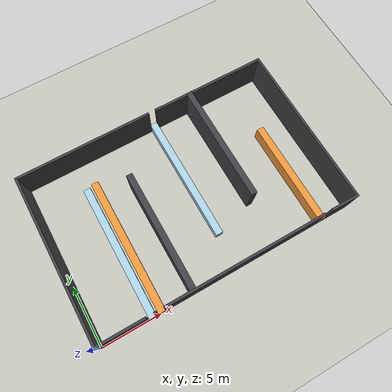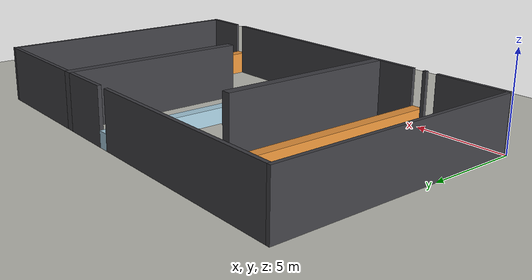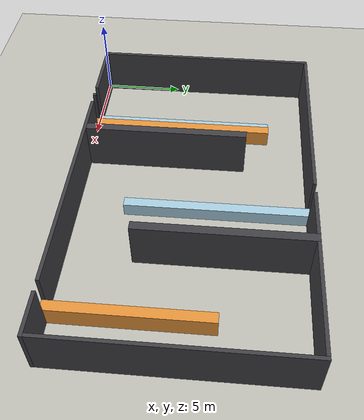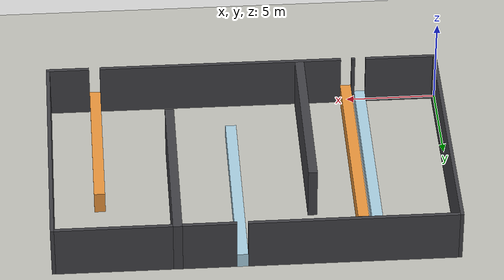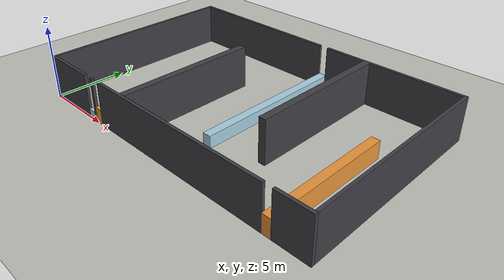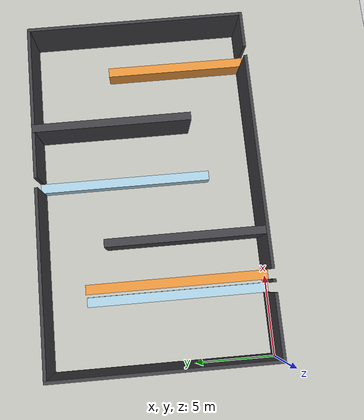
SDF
<?xml version="1.0" ?>
<!-- 자동 생성 파일 — 직접 수정하지 말 것.
     생성: python3 benchmark/export_sdf.py
     원본: benchmark/envs/heightmap.py 의 medium_corridor
     격벽 + 벽 4개, 인접 벽 높이차(0.60/1.05)로 고도 계획 필요 -->
<sdf version="1.9">
  <world name="medium_corridor">

    <physics name="1ms" type="ignored">
      <max_step_size>0.001</max_step_size>
      <real_time_factor>1.0</real_time_factor>
    </physics>

    <plugin filename="gz-sim-physics-system" name="gz::sim::systems::Physics">
    </plugin>
    <plugin filename="gz-sim-user-commands-system" name="gz::sim::systems::UserCommands">
    </plugin>
    <plugin filename="gz-sim-scene-broadcaster-system" name="gz::sim::systems::SceneBroadcaster">
    </plugin>
    <plugin filename="gz-sim-contact-system" name="gz::sim::systems::Contact">
    </plugin>
    <plugin filename="gz-sim-imu-system" name="gz::sim::systems::Imu">
    </plugin>
    <plugin filename="gz-sim-sensors-system" name="gz::sim::systems::Sensors">
      <render_engine>ogre</render_engine>
    </plugin>

    <light type="directional" name="sun">
      <cast_shadows>true</cast_shadows>
      <pose>0 0 10 0 0 0</pose>
      <diffuse>0.8 0.8 0.8 1</diffuse>
      <specular>0.2 0.2 0.2 1</specular>
      <direction>-0.5 0.1 -0.9</direction>
    </light>

    <model name="ground_plane">
      <static>true</static>
      <link name="link">
        <collision name="collision">
          <geometry><plane>
            <normal>0 0 1</normal>
            <size>32.0 24.0</size>
          </plane></geometry>
        </collision>
        <visual name="visual">
          <geometry><plane>
            <normal>0 0 1</normal>
            <size>32.0 24.0</size>
          </plane></geometry>
          <material>
            <ambient>0.75 0.75 0.72 1</ambient>
            <diffuse>0.75 0.75 0.72 1</diffuse>
          </material>
        </visual>
      </link>
    </model>

    <model name="obs_0001_h060">
      <static>true</static>
      <pose>4.300 5.750 0.300 0 0 0</pose>
      <link name="link">
        <collision name="collision">
          <geometry><box><size>0.600 11.500 0.600</size></box></geometry>
        </collision>
        <visual name="visual">
          <geometry><box><size>0.600 11.500 0.600</size></box></geometry>
          <material>
            <ambient>0.66 0.81 0.88 1</ambient>
            <diffuse>0.66 0.81 0.88 1</diffuse>
          </material>
        </visual>
      </link>
    </model>
    <model name="obs_0002_h085">
      <static>true</static>
      <pose>11.800 8.500 0.425 0 0 0</pose>
      <link name="link">
        <collision name="collision">
          <geometry><box><size>0.600 11.000 0.850</size></box></geometry>
        </collision>
        <visual name="visual">
          <geometry><box><size>0.600 11.000 0.850</size></box></geometry>
          <material>
            <ambient>0.66 0.81 0.88 1</ambient>
            <diffuse>0.66 0.81 0.88 1</diffuse>
          </material>
        </visual>
      </link>
    </model>
    <model name="obs_0003_h105">
      <static>true</static>
      <pose>5.100 5.750 0.525 0 0 0</pose>
      <link name="link">
        <collision name="collision">
          <geometry><box><size>0.600 11.500 1.050</size></box></geometry>
        </collision>
        <visual name="visual">
          <geometry><box><size>0.600 11.500 1.050</size></box></geometry>
          <material>
            <ambient>0.91 0.58 0.23 1</ambient>
            <diffuse>0.91 0.58 0.23 1</diffuse>
          </material>
        </visual>
      </link>
    </model>
    <model name="obs_0004_h125">
      <static>true</static>
      <pose>19.300 4.500 0.625 0 0 0</pose>
      <link name="link">
        <collision name="collision">
          <geometry><box><size>0.600 9.000 1.250</size></box></geometry>
        </collision>
        <visual name="visual">
          <geometry><box><size>0.600 9.000 1.250</size></box></geometry>
          <material>
            <ambient>0.91 0.58 0.23 1</ambient>
            <diffuse>0.91 0.58 0.23 1</diffuse>
          </material>
        </visual>
      </link>
    </model>
    <model name="obs_0005_h300">
      <static>true</static>
      <pose>2.000 0.100 1.500 0 0 0</pose>
      <link name="link">
        <collision name="collision">
          <geometry><box><size>4.000 0.200 3.000</size></box></geometry>
        </collision>
        <visual name="visual">
          <geometry><box><size>4.000 0.200 3.000</size></box></geometry>
          <material>
            <ambient>0.25 0.25 0.27 1</ambient>
            <diffuse>0.25 0.25 0.27 1</diffuse>
          </material>
        </visual>
      </link>
    </model>
    <model name="obs_0006_h300">
      <static>true</static>
      <pose>4.700 0.100 1.500 0 0 0</pose>
      <link name="link">
        <collision name="collision">
          <geometry><box><size>0.200 0.200 3.000</size></box></geometry>
        </collision>
        <visual name="visual">
          <geometry><box><size>0.200 0.200 3.000</size></box></geometry>
          <material>
            <ambient>0.25 0.25 0.27 1</ambient>
            <diffuse>0.25 0.25 0.27 1</diffuse>
          </material>
        </visual>
      </link>
    </model>
    <model name="obs_0007_h300">
      <static>true</static>
      <pose>12.200 0.100 1.500 0 0 0</pose>
      <link name="link">
        <collision name="collision">
          <geometry><box><size>13.600 0.200 3.000</size></box></geometry>
        </collision>
        <visual name="visual">
          <geometry><box><size>13.600 0.200 3.000</size></box></geometry>
          <material>
            <ambient>0.25 0.25 0.27 1</ambient>
            <diffuse>0.25 0.25 0.27 1</diffuse>
          </material>
        </visual>
      </link>
    </model>
    <model name="obs_0008_h300">
      <static>true</static>
      <pose>20.800 0.100 1.500 0 0 0</pose>
      <link name="link">
        <collision name="collision">
          <geometry><box><size>2.400 0.200 3.000</size></box></geometry>
        </collision>
        <visual name="visual">
          <geometry><box><size>2.400 0.200 3.000</size></box></geometry>
          <material>
            <ambient>0.25 0.25 0.27 1</ambient>
            <diffuse>0.25 0.25 0.27 1</diffuse>
          </material>
        </visual>
      </link>
    </model>
    <model name="obs_0009_h300">
      <static>true</static>
      <pose>0.100 7.100 1.500 0 0 0</pose>
      <link name="link">
        <collision name="collision">
          <geometry><box><size>0.200 13.800 3.000</size></box></geometry>
        </collision>
        <visual name="visual">
          <geometry><box><size>0.200 13.800 3.000</size></box></geometry>
          <material>
            <ambient>0.25 0.25 0.27 1</ambient>
            <diffuse>0.25 0.25 0.27 1</diffuse>
          </material>
        </visual>
      </link>
    </model>
    <model name="obs_0010_h300">
      <static>true</static>
      <pose>7.750 5.100 1.500 0 0 0</pose>
      <link name="link">
        <collision name="collision">
          <geometry><box><size>0.500 9.800 3.000</size></box></geometry>
        </collision>
        <visual name="visual">
          <geometry><box><size>0.500 9.800 3.000</size></box></geometry>
          <material>
            <ambient>0.25 0.25 0.27 1</ambient>
            <diffuse>0.25 0.25 0.27 1</diffuse>
          </material>
        </visual>
      </link>
    </model>
    <model name="obs_0011_h300">
      <static>true</static>
      <pose>21.900 7.100 1.500 0 0 0</pose>
      <link name="link">
        <collision name="collision">
          <geometry><box><size>0.200 13.800 3.000</size></box></geometry>
        </collision>
        <visual name="visual">
          <geometry><box><size>0.200 13.800 3.000</size></box></geometry>
          <material>
            <ambient>0.25 0.25 0.27 1</ambient>
            <diffuse>0.25 0.25 0.27 1</diffuse>
          </material>
        </visual>
      </link>
    </model>
    <model name="obs_0012_h300">
      <static>true</static>
      <pose>15.250 9.000 1.500 0 0 0</pose>
      <link name="link">
        <collision name="collision">
          <geometry><box><size>0.500 10.000 3.000</size></box></geometry>
        </collision>
        <visual name="visual">
          <geometry><box><size>0.500 10.000 3.000</size></box></geometry>
          <material>
            <ambient>0.25 0.25 0.27 1</ambient>
            <diffuse>0.25 0.25 0.27 1</diffuse>
          </material>
        </visual>
      </link>
    </model>
    <model name="obs_0013_h300">
      <static>true</static>
      <pose>5.850 13.900 1.500 0 0 0</pose>
      <link name="link">
        <collision name="collision">
          <geometry><box><size>11.300 0.200 3.000</size></box></geometry>
        </collision>
        <visual name="visual">
          <geometry><box><size>11.300 0.200 3.000</size></box></geometry>
          <material>
            <ambient>0.25 0.25 0.27 1</ambient>
            <diffuse>0.25 0.25 0.27 1</diffuse>
          </material>
        </visual>
      </link>
    </model>
    <model name="obs_0014_h300">
      <static>true</static>
      <pose>13.550 13.900 1.500 0 0 0</pose>
      <link name="link">
        <collision name="collision">
          <geometry><box><size>2.900 0.200 3.000</size></box></geometry>
        </collision>
        <visual name="visual">
          <geometry><box><size>2.900 0.200 3.000</size></box></geometry>
          <material>
            <ambient>0.25 0.25 0.27 1</ambient>
            <diffuse>0.25 0.25 0.27 1</diffuse>
          </material>
        </visual>
      </link>
    </model>
    <model name="obs_0015_h300">
      <static>true</static>
      <pose>18.650 13.900 1.500 0 0 0</pose>
      <link name="link">
        <collision name="collision">
          <geometry><box><size>6.300 0.200 3.000</size></box></geometry>
        </collision>
        <visual name="visual">
          <geometry><box><size>6.300 0.200 3.000</size></box></geometry>
          <material>
            <ambient>0.25 0.25 0.27 1</ambient>
            <diffuse>0.25 0.25 0.27 1</diffuse>
          </material>
        </visual>
      </link>
    </model>

  </world>
</sdf>
